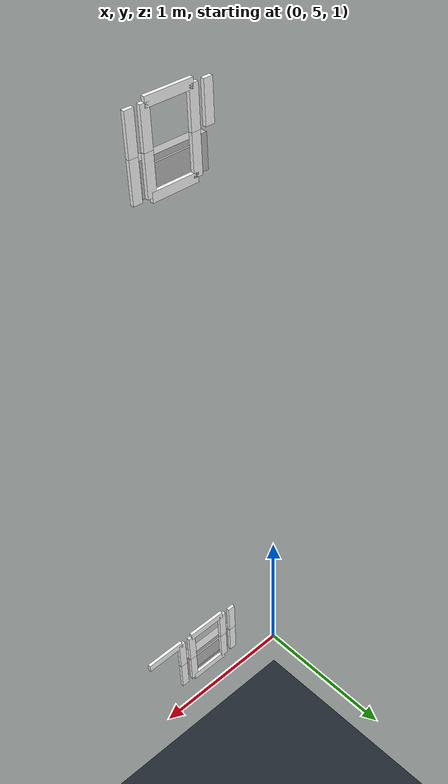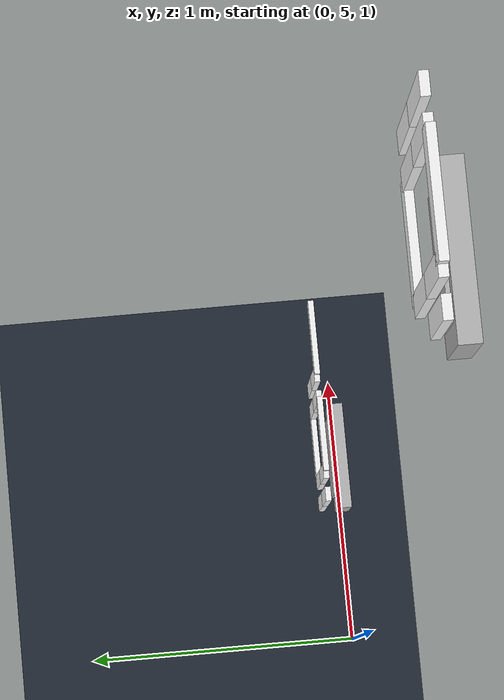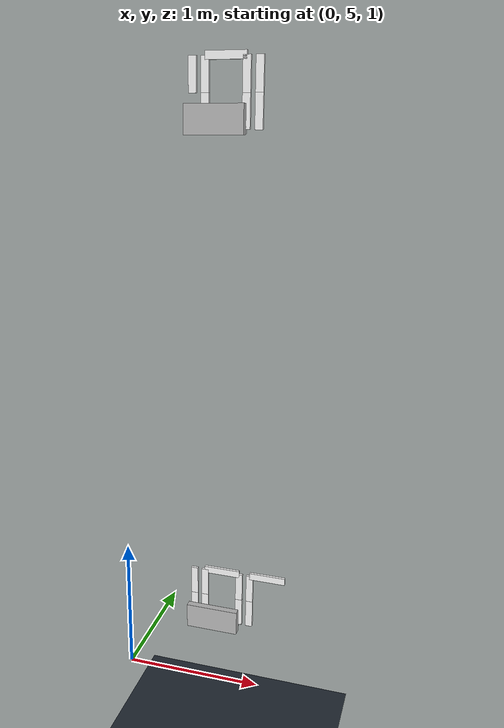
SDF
<sdf version="1.6">
 <world name="hotel_two_floor">
  <model name="ground_plane">
   <static>true</static>
   <link name="link">
    <collision name="col">
     <geometry><plane><normal>0 0 1</normal><size>100 100</size></plane></geometry>
    </collision>
    <visual name="vis">
     <geometry><plane><normal>0 0 1</normal><size>100 100</size></plane></geometry>
     <material><ambient>0.13 0.16 0.20 1</ambient><diffuse>0.13 0.16 0.20 1</diffuse></material>
    </visual>
   </link>
  </model>
  <model name="f1_sign_n3">
   <static>true</static>
   <pose>0.6500 5.0250 1.5000 0 0 0</pose>
   <link name="link">
    <collision name="col"><geometry><box><size>0.3800 0.0500 0.1800</size></box></geometry></collision>
    <visual name="vis">
     <geometry><box><size>0.3800 0.0500 0.1800</size></box></geometry>
     <material>
      <material>
       <ambient>0.11 0.43 0.82 1</ambient>
       <diffuse>0.11 0.43 0.82 1</diffuse>
       <specular>0.10 0.10 0.10 1</specular>
      </material>
     </material>
    </visual>
   </link>
  </model>
  <model name="f1_lbl_n3">
   <static>true</static>
   <pose>0.6500 5.0550 1.5000 0 0 0</pose>
   <link name="link">
    <visual name="vis">
     <geometry><box><size>0.2800 0.0100 0.1200</size></box></geometry>
     <material>
      <material>
       <ambient>0.97 0.97 0.97 1</ambient>
       <diffuse>0.97 0.97 0.97 1</diffuse>
       <specular>0.10 0.10 0.10 1</specular>
      </material>
     </material>
    </visual>
   </link>
  </model>
  <model name="f1_room_n_108_0_b">
   <static>true</static>
   <pose>0.4900 5.1000 1.7550 0 0 0</pose>
   <link name="link">
    <visual name="vis">
     <geometry><box><size>0.0500 0.0200 0.2100</size></box></geometry>
     <material>
      <ambient>0.98 0.98 0.98 1</ambient>
      <diffuse>0.98 0.98 0.98 1</diffuse>
      <specular>0.20 0.20 0.20 1</specular>
     </material>
    </visual>
   </link>
  </model>
  <model name="f1_room_n_108_0_c">
   <static>true</static>
   <pose>0.4900 5.1000 1.5450 0 0 0</pose>
   <link name="link">
    <visual name="vis">
     <geometry><box><size>0.0500 0.0200 0.2100</size></box></geometry>
     <material>
      <ambient>0.98 0.98 0.98 1</ambient>
      <diffuse>0.98 0.98 0.98 1</diffuse>
      <specular>0.20 0.20 0.20 1</specular>
     </material>
    </visual>
   </link>
  </model>
  <model name="f1_room_n_108_1_a">
   <static>true</static>
   <pose>0.7000 5.1000 1.8600 0 0 0</pose>
   <link name="link">
    <visual name="vis">
     <geometry><box><size>0.2600 0.0200 0.0500</size></box></geometry>
     <material>
      <ambient>0.98 0.98 0.98 1</ambient>
      <diffuse>0.98 0.98 0.98 1</diffuse>
      <specular>0.20 0.20 0.20 1</specular>
     </material>
    </visual>
   </link>
  </model>
  <model name="f1_room_n_108_1_b">
   <static>true</static>
   <pose>0.8300 5.1000 1.7550 0 0 0</pose>
   <link name="link">
    <visual name="vis">
     <geometry><box><size>0.0500 0.0200 0.2100</size></box></geometry>
     <material>
      <ambient>0.98 0.98 0.98 1</ambient>
      <diffuse>0.98 0.98 0.98 1</diffuse>
      <specular>0.20 0.20 0.20 1</specular>
     </material>
    </visual>
   </link>
  </model>
  <model name="f1_room_n_108_1_c">
   <static>true</static>
   <pose>0.8300 5.1000 1.5450 0 0 0</pose>
   <link name="link">
    <visual name="vis">
     <geometry><box><size>0.0500 0.0200 0.2100</size></box></geometry>
     <material>
      <ambient>0.98 0.98 0.98 1</ambient>
      <diffuse>0.98 0.98 0.98 1</diffuse>
      <specular>0.20 0.20 0.20 1</specular>
     </material>
    </visual>
   </link>
  </model>
  <model name="f1_room_n_108_1_f">
   <static>true</static>
   <pose>0.5700 5.1000 1.7550 0 0 0</pose>
   <link name="link">
    <visual name="vis">
     <geometry><box><size>0.0500 0.0200 0.2100</size></box></geometry>
     <material>
      <ambient>0.98 0.98 0.98 1</ambient>
      <diffuse>0.98 0.98 0.98 1</diffuse>
      <specular>0.20 0.20 0.20 1</specular>
     </material>
    </visual>
   </link>
  </model>
  <model name="f1_room_n_108_1_e">
   <static>true</static>
   <pose>0.5700 5.1000 1.5450 0 0 0</pose>
   <link name="link">
    <visual name="vis">
     <geometry><box><size>0.0500 0.0200 0.2100</size></box></geometry>
     <material>
      <ambient>0.98 0.98 0.98 1</ambient>
      <diffuse>0.98 0.98 0.98 1</diffuse>
      <specular>0.20 0.20 0.20 1</specular>
     </material>
    </visual>
   </link>
  </model>
  <model name="f1_room_n_108_1_d">
   <static>true</static>
   <pose>0.7000 5.1000 1.4400 0 0 0</pose>
   <link name="link">
    <visual name="vis">
     <geometry><box><size>0.2600 0.0200 0.0500</size></box></geometry>
     <material>
      <ambient>0.98 0.98 0.98 1</ambient>
      <diffuse>0.98 0.98 0.98 1</diffuse>
      <specular>0.20 0.20 0.20 1</specular>
     </material>
    </visual>
   </link>
  </model>
  <model name="f1_room_n_108_2_a">
   <static>true</static>
   <pose>1.0400 5.1000 1.8600 0 0 0</pose>
   <link name="link">
    <visual name="vis">
     <geometry><box><size>0.2600 0.0200 0.0500</size></box></geometry>
     <material>
      <ambient>0.98 0.98 0.98 1</ambient>
      <diffuse>0.98 0.98 0.98 1</diffuse>
      <specular>0.20 0.20 0.20 1</specular>
     </material>
    </visual>
   </link>
  </model>
  <model name="f1_room_n_108_2_e">
   <static>true</static>
   <pose>0.9100 5.1000 1.5450 0 0 0</pose>
   <link name="link">
    <visual name="vis">
     <geometry><box><size>0.0500 0.0200 0.2100</size></box></geometry>
     <material>
      <ambient>0.98 0.98 0.98 1</ambient>
      <diffuse>0.98 0.98 0.98 1</diffuse>
      <specular>0.20 0.20 0.20 1</specular>
     </material>
    </visual>
   </link>
  </model>
  <model name="f1_room_n_108_2_f">
   <static>true</static>
   <pose>0.9100 5.1000 1.7550 0 0 0</pose>
   <link name="link">
    <visual name="vis">
     <geometry><box><size>0.0500 0.0200 0.2100</size></box></geometry>
     <material>
      <ambient>0.98 0.98 0.98 1</ambient>
      <diffuse>0.98 0.98 0.98 1</diffuse>
      <specular>0.20 0.20 0.20 1</specular>
     </material>
    </visual>
   </link>
  </model>
  <model name="f2_sign_n3">
   <static>true</static>
   <pose>0.6500 5.0250 5.0000 0 0 0</pose>
   <link name="link">
    <collision name="col"><geometry><box><size>0.3800 0.0500 0.1800</size></box></geometry></collision>
    <visual name="vis">
     <geometry><box><size>0.3800 0.0500 0.1800</size></box></geometry>
     <material>
      <material>
       <ambient>0.11 0.43 0.82 1</ambient>
       <diffuse>0.11 0.43 0.82 1</diffuse>
       <specular>0.10 0.10 0.10 1</specular>
      </material>
     </material>
    </visual>
   </link>
  </model>
  <model name="f2_lbl_n3">
   <static>true</static>
   <pose>0.6500 5.0550 5.0000 0 0 0</pose>
   <link name="link">
    <visual name="vis">
     <geometry><box><size>0.2800 0.0100 0.1200</size></box></geometry>
     <material>
      <material>
       <ambient>0.97 0.97 0.97 1</ambient>
       <diffuse>0.97 0.97 0.97 1</diffuse>
       <specular>0.10 0.10 0.10 1</specular>
      </material>
     </material>
    </visual>
   </link>
  </model>
  <model name="f2_room_n_208_0_b">
   <static>true</static>
   <pose>0.4900 5.1000 5.2550 0 0 0</pose>
   <link name="link">
    <visual name="vis">
     <geometry><box><size>0.0500 0.0200 0.2100</size></box></geometry>
     <material>
      <ambient>0.98 0.98 0.98 1</ambient>
      <diffuse>0.98 0.98 0.98 1</diffuse>
      <specular>0.20 0.20 0.20 1</specular>
     </material>
    </visual>
   </link>
  </model>
  <model name="f2_room_n_208_1_a">
   <static>true</static>
   <pose>0.7000 5.1000 5.3600 0 0 0</pose>
   <link name="link">
    <visual name="vis">
     <geometry><box><size>0.2600 0.0200 0.0500</size></box></geometry>
     <material>
      <ambient>0.98 0.98 0.98 1</ambient>
      <diffuse>0.98 0.98 0.98 1</diffuse>
      <specular>0.20 0.20 0.20 1</specular>
     </material>
    </visual>
   </link>
  </model>
  <model name="f2_room_n_208_1_b">
   <static>true</static>
   <pose>0.8300 5.1000 5.2550 0 0 0</pose>
   <link name="link">
    <visual name="vis">
     <geometry><box><size>0.0500 0.0200 0.2100</size></box></geometry>
     <material>
      <ambient>0.98 0.98 0.98 1</ambient>
      <diffuse>0.98 0.98 0.98 1</diffuse>
      <specular>0.20 0.20 0.20 1</specular>
     </material>
    </visual>
   </link>
  </model>
  <model name="f2_room_n_208_1_c">
   <static>true</static>
   <pose>0.8300 5.1000 5.0450 0 0 0</pose>
   <link name="link">
    <visual name="vis">
     <geometry><box><size>0.0500 0.0200 0.2100</size></box></geometry>
     <material>
      <ambient>0.98 0.98 0.98 1</ambient>
      <diffuse>0.98 0.98 0.98 1</diffuse>
      <specular>0.20 0.20 0.20 1</specular>
     </material>
    </visual>
   </link>
  </model>
  <model name="f2_room_n_208_1_f">
   <static>true</static>
   <pose>0.5700 5.1000 5.2550 0 0 0</pose>
   <link name="link">
    <visual name="vis">
     <geometry><box><size>0.0500 0.0200 0.2100</size></box></geometry>
     <material>
      <ambient>0.98 0.98 0.98 1</ambient>
      <diffuse>0.98 0.98 0.98 1</diffuse>
      <specular>0.20 0.20 0.20 1</specular>
     </material>
    </visual>
   </link>
  </model>
  <model name="f2_room_n_208_1_e">
   <static>true</static>
   <pose>0.5700 5.1000 5.0450 0 0 0</pose>
   <link name="link">
    <visual name="vis">
     <geometry><box><size>0.0500 0.0200 0.2100</size></box></geometry>
     <material>
      <ambient>0.98 0.98 0.98 1</ambient>
      <diffuse>0.98 0.98 0.98 1</diffuse>
      <specular>0.20 0.20 0.20 1</specular>
     </material>
    </visual>
   </link>
  </model>
  <model name="f2_room_n_208_1_d">
   <static>true</static>
   <pose>0.7000 5.1000 4.9400 0 0 0</pose>
   <link name="link">
    <visual name="vis">
     <geometry><box><size>0.2600 0.0200 0.0500</size></box></geometry>
     <material>
      <ambient>0.98 0.98 0.98 1</ambient>
      <diffuse>0.98 0.98 0.98 1</diffuse>
      <specular>0.20 0.20 0.20 1</specular>
     </material>
    </visual>
   </link>
  </model>
  <model name="f2_room_n_208_2_e">
   <static>true</static>
   <pose>0.9100 5.1000 5.0450 0 0 0</pose>
   <link name="link">
    <visual name="vis">
     <geometry><box><size>0.0500 0.0200 0.2100</size></box></geometry>
     <material>
      <ambient>0.98 0.98 0.98 1</ambient>
      <diffuse>0.98 0.98 0.98 1</diffuse>
      <specular>0.20 0.20 0.20 1</specular>
     </material>
    </visual>
   </link>
  </model>
  <model name="f2_room_n_208_2_f">
   <static>true</static>
   <pose>0.9100 5.1000 5.2550 0 0 0</pose>
   <link name="link">
    <visual name="vis">
     <geometry><box><size>0.0500 0.0200 0.2100</size></box></geometry>
     <material>
      <ambient>0.98 0.98 0.98 1</ambient>
      <diffuse>0.98 0.98 0.98 1</diffuse>
      <specular>0.20 0.20 0.20 1</specular>
     </material>
    </visual>
   </link>
  </model>
 </world>
</sdf>
